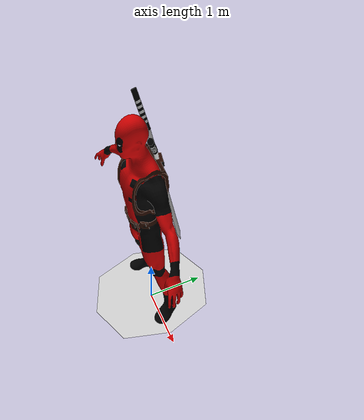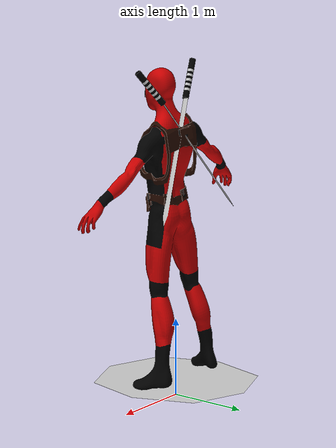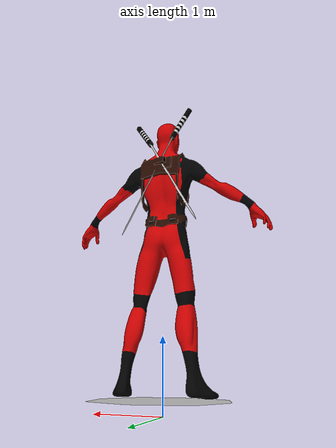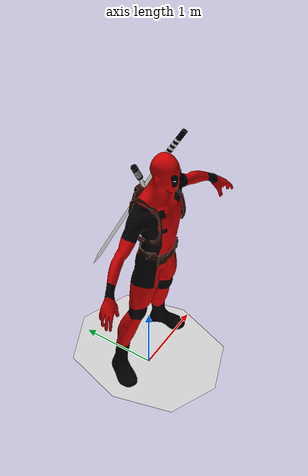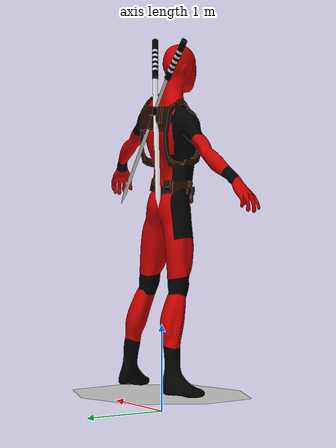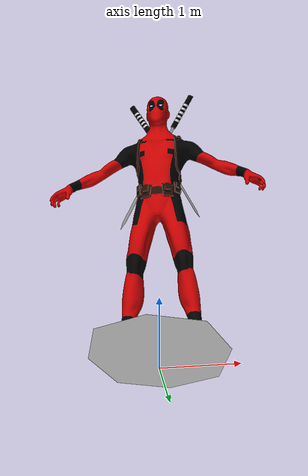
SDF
<?xml version="1.0" ?>
<sdf version="1.5">
  <model name="deadpool">
    <link name="link">
      <inertial>
        <pose>0 -0.1 0.95 0 0 0</pose>
        <mass>80.0</mass>
        <inertia>
          <ixx>24.88</ixx>
          <ixy>0</ixy>
          <ixz>0</ixz>
          <iyy>25.73</iyy>
          <iyz>0</iyz>
          <izz>2.48</izz>
        </inertia>
      </inertial>

      <collision name="deadpool_floor">
        <pose>0 -0.1 0.01 0 0 0</pose>
        <geometry>
          <box>
            <size>0.5 0.35 0.02</size>
          </box>
        </geometry>
      </collision>

      <collision name="deadpool_collision">
        <pose>0 0 0.02 0.04 0 0</pose>
        <geometry>
          <mesh>
            <uri>model://deadpool/meshes/deadpool.dae</uri>
          </mesh>
        </geometry>
      </collision>

      <visual name="deadpool_visual">
        <pose>0 0 0.2 0.04 0 0</pose>
        <geometry>
          <mesh>
            <uri>model://deadpool/meshes/deadpool.dae</uri>
          </mesh>
        </geometry>
      </visual>
    </link>
  </model>
</sdf>
